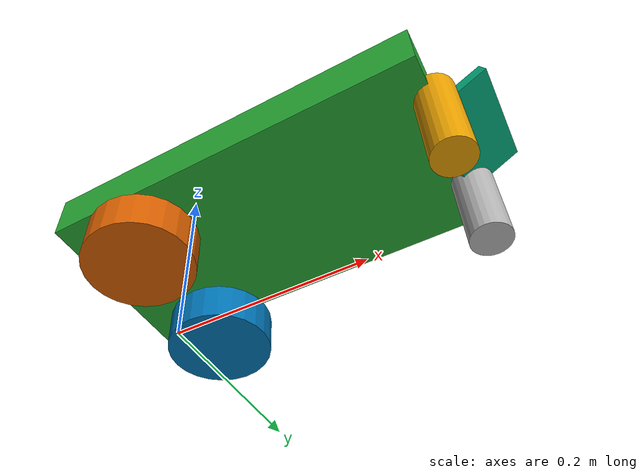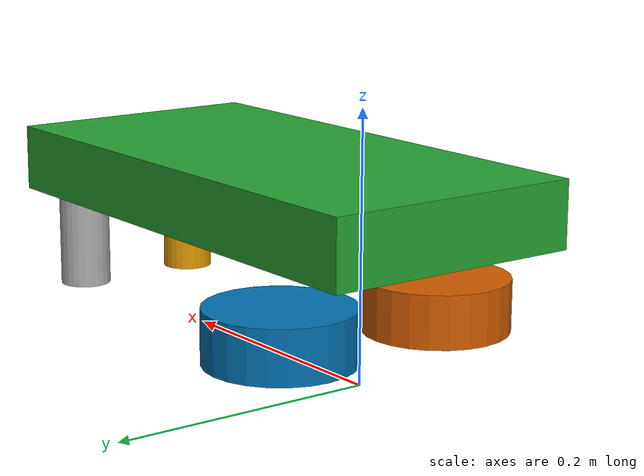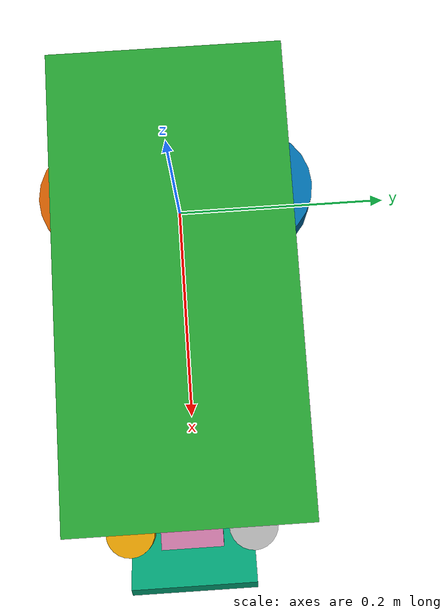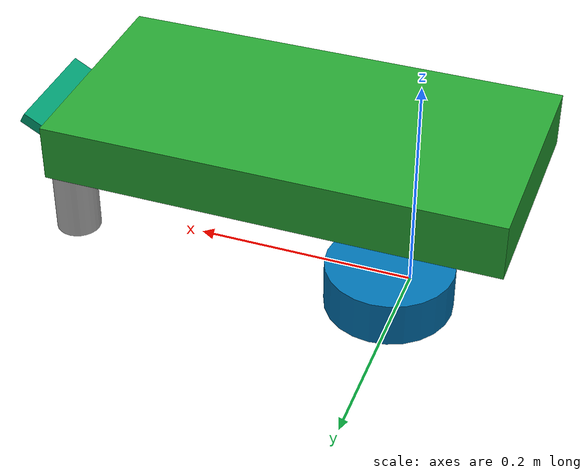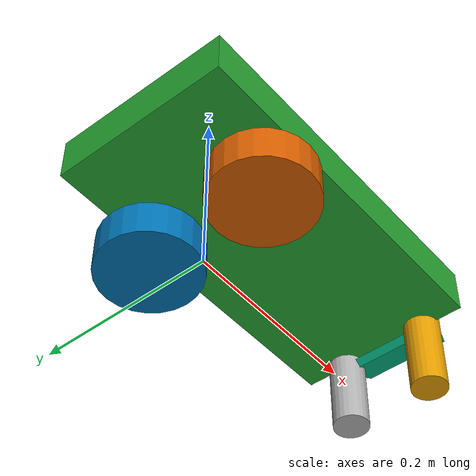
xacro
<?xml version="1.0"?>
<robot name="shuttle">

  <link name="base_link"/>

  <link name="body">
    <visual>
      <origin xyz="0.1 0 0.13" rpy="0 0 0"/>

      <geometry>
        <box size="0.4 0.2 0.05" />
        <!--mesh filename="file://$(arg models_directory)/shuttle_parts/navette_body.stl" scale="0.04 0.04 0.04"/-->
      </geometry>
    </visual>
    <collision>

      <origin xyz="0.1 0 0.13" rpy="0 0 0"/>

      <geometry>
        <box size="0.4 0.2 0.05" />
      </geometry>

      <surface>
        <friction>
          <ode>
            <mu>0.01</mu>
            <mu2>0.01</mu2>
          </ode>
        </friction>
        <bounce>
          <restitution_coefficient>0.01</restitution_coefficient>
          <threshold>0.01</threshold>
        </bounce>
        <contact>
          <ode>
            <max_vel>0.1</max_vel>
            <soft_cfm>0.8</soft_cfm>
            <soft_erp>0.2</soft_erp>
            <kd>2500</kd>
            <kp>10</kp>
            <min_depth>0.001</min_depth>
          </ode>
        </contact>
      </surface>

    </collision>

    <inertial>
      <origin xyz="0.15 0 0.12" rpy="0 0 0"/>
      <mass value="4.000000000" />
      <inertia ixx="0.014166667" ixy="0.000000000" ixz="0.000000000" iyy="0.054166667" iyz="0.000000000" izz="0.066666667"/>
    </inertial>

  </link>

  <link name="ski">
    <visual>
      <geometry>
        <box size="0.06 0.1 0.01" />
        <!--mesh filename="file://$(arg models_directory)/shuttle_parts/navette_body.stl" scale="0.04 0.04 0.04"/-->
      </geometry>
    </visual>
    <collision>
      <geometry>
        <box size="0.06 0.1 0.01" />
      </geometry>

      <surface>
        <friction>
          <ode>
            <mu>0.01</mu>
            <mu2>0.01</mu2>
          </ode>
        </friction>
      </surface>
    </collision>

    <inertial>
      <origin rpy="0 0 0" xyz="0 0 0" />
      <mass value="0.200000000" />
      <inertia ixx="0.000168333" ixy="0.000000000" ixz="0.000000000" iyy="0.000061667" iyz="0.000000000" izz="0.000226667"/>
    </inertial>

  </link>

  <link name="tail_plate">
    <visual>
      <geometry>
        <box size="0.03 0.1 0.01" />
      </geometry>
    </visual>

    <collision>
      <geometry>
        <box size="0.03 0.05 0.01" />
      </geometry>
    </collision>

    <inertial>
      <origin rpy="0 0 0" xyz="0 0 0" />
      <mass value="0.300000000" />
      <inertia ixx="0.000065000" ixy="0.000000000" ixz="0.000000000" iyy="0.000025000" iyz="0.000000000" izz="0.000085000"/>
    </inertial>
  </link>

  <link name="cylinder1">
    <visual>
      <geometry>
        <cylinder radius="0.055" length="0.04"/>
      </geometry>
    </visual>

    <collision>
      <geometry>
        <cylinder radius="0.055" length="0.04"/>
      </geometry>
      <surface>
        <friction>
          <ode>
            <mu>0.9</mu>
            <mu2>0.9</mu2>
          </ode>
        </friction>
      </surface>
    </collision>

    <inertial>
      <origin rpy="0 0 0" xyz="0 0 0" />
      <mass value="1.000000000" />
      <inertia ixx="0.001033333" ixy="0.000000000" ixz="0.000000000" iyy="0.001033333" iyz="0.000000000" izz="0.001250000"/>
    </inertial>
        </link>

  <link name="cylinder2">

    <visual>
      <geometry>
        <cylinder radius="0.055" length="0.04"/>
      </geometry>
    </visual>

    <collision>
      <geometry>
        <cylinder radius="0.055" length="0.04"/>
      </geometry>
    </collision>
    <inertial>
      <origin rpy="0 0 0" xyz="0 0 0" />
      <mass value="1.000000000" />
      <inertia ixx="0.001033333" ixy="0.000000000" ixz="0.000000000" iyy="0.001033333" iyz="0.000000000" izz="0.001250000"/>
    </inertial>
        </link>

  <link name="head_plate">
    <visual>
      <geometry>
        <box size="0.03 0.05 0.01" />
      </geometry>
    </visual>

    <collision>
      <geometry>
        <box size="0.03 0.05 0.01" />
      </geometry>
      <surface>
        <friction>
          <ode>
            <mu>0.01</mu>
            <mu2>0.01</mu2>
          </ode>
        </friction>
      </surface>

    </collision>

    <inertial>
      <origin rpy="0 0 0" xyz="0 0 0" />
      <mass value="0.300000000" />
      <inertia ixx="0.000065000" ixy="0.000000000" ixz="0.000000000" iyy="0.000025000" iyz="0.000000000" izz="0.000085000"/>
    </inertial>
  </link>

  <link name="free_wheel_1">

    <visual>
      <geometry>
        <cylinder radius="0.02" length="0.1"/>
      </geometry>
    </visual>
    <collision>
      <geometry>
        <cylinder radius="0.02" length="0.1"/>
      </geometry>
      <surface>
        <friction>
          <ode>
            <mu>0.01</mu>
            <mu2>0.01</mu2>
          </ode>
        </friction>
      </surface>

    </collision>

    <inertial>
      <origin rpy="0 0 0" xyz="0 0 0" />
      <mass value="0.500000000" />
      <inertia ixx="0.000429167" ixy="0.000000000" ixz="0.000000000" iyy="0.000429167" iyz="0.000000000" izz="0.000025000"/>
    </inertial>
          </link>

  <link name="free_wheel_2">
    <visual>
      <geometry>
        <cylinder radius="0.02" length="0.1"/>
      </geometry>
    </visual>
    <collision>
      <geometry>
        <cylinder radius="0.02" length="0.1"/>
      </geometry>

      <surface>
        <friction>
          <ode>
            <mu>0.01</mu>
            <mu2>0.01</mu2>
          </ode>
        </friction>
      </surface>

    </collision>

    <inertial>
      <origin rpy="0 0 0" xyz="0 0 0" />
      <mass value="0.500000000" />
      <inertia ixx="0.000429167" ixy="0.000000000" ixz="0.000000000" iyy="0.000429167" iyz="0.000000000" izz="0.000025000"/>
    </inertial>
        </link>

<joint name="base_joint" type="fixed">
  <parent link="base_link"/>
  <child link="body"/>
  <origin xyz="0 0 0" rpy="0 0 0"/>
</joint>

<joint name="ski_joint" type="fixed">
  <parent link="body"/>
  <child link="ski"/>
  <origin xyz="0.32 0 0.11" rpy="0 -0.5 0"/>
</joint>

<joint name="tail_plate_joint" type="continuous">
  <parent link="body"/>
  <child link="tail_plate"/>
  <axis xyz="0 0 1"/>
  <origin xyz="0 0 0.12" rpy="0 0 0"/>
</joint>

<joint name="cylinder1_joint" type="continuous">
<parent link="tail_plate"/>
<child link="cylinder1"/>
<axis xyz="0 0 1"/>
<origin xyz="0 0.07 -0.07" rpy="0.0 0 0"/>
</joint>

<joint name="cylinder2_joint" type="continuous">
<parent link="tail_plate"/>
<child link="cylinder2"/>
<axis xyz="0 0 1"/>
<origin xyz="0 -0.07 -0.07" rpy="0.0 0 0"/>
</joint>

<joint name="free_plate" type="continuous">
  <parent link="body"/>
  <child link="head_plate"/>
  <axis xyz="0 0 1"/>
  <origin xyz="0.3 0 0.12" rpy="0 0 0"/>
</joint>

<joint name="free_wheel_1_joint" type="continuous">
  <parent link="head_plate"/>
  <child link="free_wheel_1"/>
  <axis xyz="0 0 1"/>
  <origin xyz="0 0.05 -0.05" rpy="0 0 0"/>
</joint>

<joint name="free_wheel_2_joint" type="continuous">
  <parent link="head_plate"/>
  <child link="free_wheel_2"/>
  <axis xyz="0 0 1"/>
  <origin xyz="0 -0.05 -0.05" rpy="0 0 0"/>
</joint>

<transmission name="motor1_trans">
  <type>transmission_interface/SimpleTransmission</type>
  <joint name="cylinder1_joint">
    <hardwareInterface>EffortJointInterface</hardwareInterface>
  </joint>
  <actuator name="motor1_act">
    <mechanicalReduction>50</mechanicalReduction>
    <hardwareInterface>EffortJointInterface</hardwareInterface>
  </actuator>
</transmission>

<transmission name="motor2_trans">
  <type>transmission_interface/SimpleTransmission</type>
  <joint name="cylinder2_joint">
    <hardwareInterface>EffortJointInterface</hardwareInterface>
  </joint>
  <actuator name="motor1_act">
    <mechanicalReduction>50</mechanicalReduction>
    <hardwareInterface>EffortJointInterface</hardwareInterface>
  </actuator>
</transmission>

<gazebo>
  <plugin name="gazebo_ros_control" filename="libgazebo_ros_control.so">
  </plugin>
</gazebo>

<gazebo reference="body">
  <material>Gazebo/Green</material>

  <surface>
    <friction>
      <ode>
        <mu>0.5</mu>
        <mu2>0.5</mu2>
      </ode>
    </friction>
    <bounce>
      <restitution_coefficient>0.01</restitution_coefficient>
      <threshold>0.01</threshold>
    </bounce>
    <contact>
      <ode>
        <max_vel>0.1</max_vel>
        <soft_cfm>0.8</soft_cfm>
        <soft_erp>0.2</soft_erp>
        <kd>2500</kd>
        <kp>10</kp>
        <min_depth>0.001</min_depth>
      </ode>
    </contact>
  </surface>

</gazebo>

</robot>
